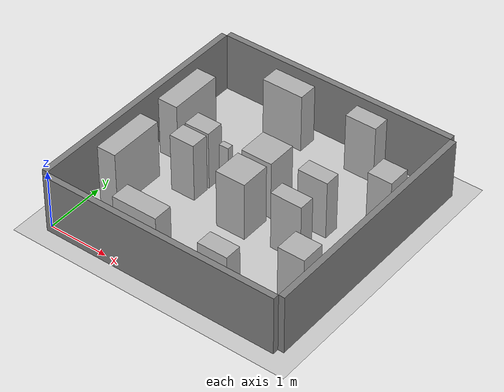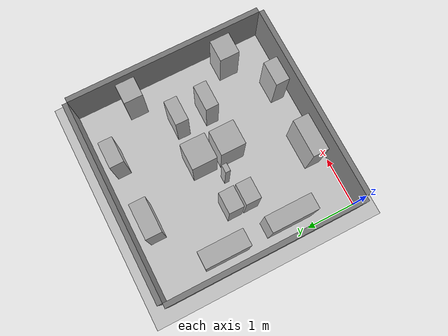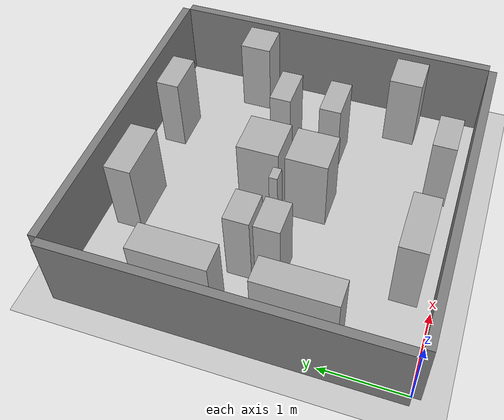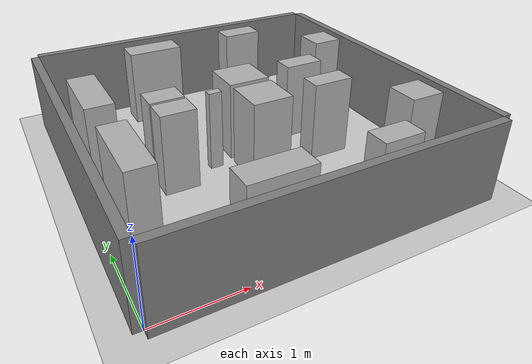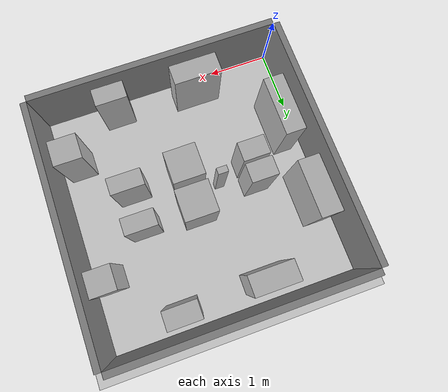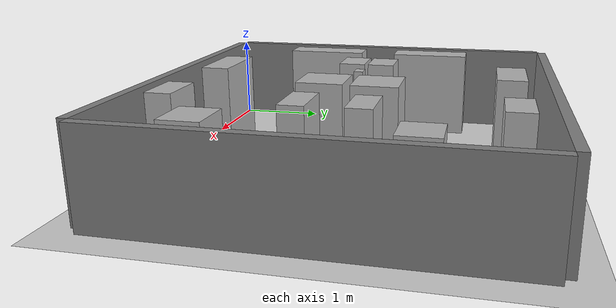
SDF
<?xml version="1.0" ?>
<sdf version="1.6">
  <world name="competition">

    <!-- Ground plane and sun -->
    <include>
      <uri>model://sun</uri>
    </include>
    <include>
      <uri>model://ground_plane</uri>
    </include>

    <!-- Scene configuration -->
    <scene>
      <shadows>false</shadows>
      <grid>false</grid>
      <origin_visual>false</origin_visual>
    </scene>

    <gui fullscreen="0">
      <camera name="orbit_camera">
        <!-- Top-down view of the arena. Robot spawns near (1.0, 0.3). -->
        <pose>2 2 5 0 1.57 0.785</pose>
        <view_controller>orbit</view_controller>
      </camera>
    </gui>

    <!-- Physics: ODE -->
    <physics type="ode">
      <real_time_update_rate>1000</real_time_update_rate>
      <real_time_factor>1</real_time_factor>
      <max_step_size>0.001</max_step_size>
      <ode>
        <solver>
          <type>quick</type>
          <iters>150</iters>
        </solver>
        <constraints>
          <cfm>0.00001</cfm>
          <erp>0.2</erp>
          <contact_max_correcting_vel>100</contact_max_correcting_vel>
          <contact_surface_layer>0.001</contact_surface_layer>
        </constraints>
      </ode>
    </physics>

    <!-- 15 No-Go Zone Walls (ambient 0.7 0.7 0.7 1) -->

    <!-- 1. 垛码区货架B -->
    <model name="wall_垛码区货架B">
      <static>true</static>
      <pose>1.42 0.32 0.5 0 0 0</pose>
      <link name="body">
        <collision name="collision">
          <geometry>
            <box><size>0.76 0.32 1.0</size></box>
          </geometry>
        </collision>
        <visual name="visual">
          <geometry>
            <box><size>0.76 0.32 1.0</size></box>
          </geometry>
          <material>
            <ambient>0.7 0.7 0.7 1</ambient>
          <diffuse>0.7 0.7 0.7 1</diffuse>
          </material>
        </visual>
      </link>
    </model>

    <!-- 2. 分拣区货架B -->
    <model name="wall_分拣区货架B">
      <static>true</static>
      <pose>0.34 1.31 0.5 0 0 0</pose>
      <link name="body">
        <collision name="collision">
          <geometry>
            <box><size>0.32 0.94 1.0</size></box>
          </geometry>
        </collision>
        <visual name="visual">
          <geometry>
            <box><size>0.32 0.94 1.0</size></box>
          </geometry>
          <material>
            <ambient>0.7 0.7 0.7 1</ambient>
          <diffuse>0.7 0.7 0.7 1</diffuse>
          </material>
        </visual>
      </link>
    </model>

    <!-- 3. 货物待装区货架B -->
    <model name="wall_货物待装区货架B">
      <static>true</static>
      <pose>1.03 1.81 0.5 0 0 0</pose>
      <link name="body">
        <collision name="collision">
          <geometry>
            <box><size>0.42 0.30 1.0</size></box>
          </geometry>
        </collision>
        <visual name="visual">
          <geometry>
            <box><size>0.42 0.30 1.0</size></box>
          </geometry>
          <material>
            <ambient>0.7 0.7 0.7 1</ambient>
          <diffuse>0.7 0.7 0.7 1</diffuse>
          </material>
        </visual>
      </link>
    </model>

    <!-- 4. 货物装箱区B -->
    <model name="wall_货物装箱区B">
      <static>true</static>
      <pose>2.07 1.69 0.5 0 0 0</pose>
      <link name="body">
        <collision name="collision">
          <geometry>
            <box><size>0.50 0.50 1.0</size></box>
          </geometry>
        </collision>
        <visual name="visual">
          <geometry>
            <box><size>0.50 0.50 1.0</size></box>
          </geometry>
          <material>
            <ambient>0.7 0.7 0.7 1</ambient>
          <diffuse>0.7 0.7 0.7 1</diffuse>
          </material>
        </visual>
      </link>
    </model>

    <!-- 5. 零件部件仓储区 -->
    <model name="wall_零件部件仓储区">
      <static>true</static>
      <pose>1.58 1.97 0.5 0 0 0</pose>
      <link name="body">
        <collision name="collision">
          <geometry>
            <box><size>0.16 0.10 1.0</size></box>
          </geometry>
        </collision>
        <visual name="visual">
          <geometry>
            <box><size>0.16 0.10 1.0</size></box>
          </geometry>
          <material>
            <ambient>0.7 0.7 0.7 1</ambient>
          <diffuse>0.7 0.7 0.7 1</diffuse>
          </material>
        </visual>
      </link>
    </model>

    <!-- 6. 待派送区B -->
    <model name="wall_待派送区B">
      <static>true</static>
      <pose>3.66 0.92 0.5 0 0 0</pose>
      <link name="body">
        <collision name="collision">
          <geometry>
            <box><size>0.44 0.40 1.0</size></box>
          </geometry>
        </collision>
        <visual name="visual">
          <geometry>
            <box><size>0.44 0.40 1.0</size></box>
          </geometry>
          <material>
            <ambient>0.7 0.7 0.7 1</ambient>
          <diffuse>0.7 0.7 0.7 1</diffuse>
          </material>
        </visual>
      </link>
    </model>

    <!-- 7. 园区2B -->
    <model name="wall_园区2B">
      <static>true</static>
      <pose>2.96 1.67 0.5 0 0 0</pose>
      <link name="body">
        <collision name="collision">
          <geometry>
            <box><size>0.52 0.26 1.0</size></box>
          </geometry>
        </collision>
        <visual name="visual">
          <geometry>
            <box><size>0.52 0.26 1.0</size></box>
          </geometry>
          <material>
            <ambient>0.7 0.7 0.7 1</ambient>
          <diffuse>0.7 0.7 0.7 1</diffuse>
          </material>
        </visual>
      </link>
    </model>

    <!-- 8. 园区1B -->
    <model name="wall_园区1B">
      <static>true</static>
      <pose>2.79 0.28 0.5 0 0 0</pose>
      <link name="body">
        <collision name="collision">
          <geometry>
            <box><size>0.50 0.28 1.0</size></box>
          </geometry>
        </collision>
        <visual name="visual">
          <geometry>
            <box><size>0.50 0.28 1.0</size></box>
          </geometry>
          <material>
            <ambient>0.7 0.7 0.7 1</ambient>
          <diffuse>0.7 0.7 0.7 1</diffuse>
          </material>
        </visual>
      </link>
    </model>

    <!-- 9. 垛码区货架A -->
    <model name="wall_垛码区货架A">
      <static>true</static>
      <pose>1.43 3.64 0.5 0 0 0</pose>
      <link name="body">
        <collision name="collision">
          <geometry>
            <box><size>0.70 0.32 1.0</size></box>
          </geometry>
        </collision>
        <visual name="visual">
          <geometry>
            <box><size>0.70 0.32 1.0</size></box>
          </geometry>
          <material>
            <ambient>0.7 0.7 0.7 1</ambient>
          <diffuse>0.7 0.7 0.7 1</diffuse>
          </material>
        </visual>
      </link>
    </model>

    <!-- 10. 分拣区货架A -->
    <model name="wall_分拣区货架A">
      <static>true</static>
      <pose>0.33 2.65 0.5 0 0 0</pose>
      <link name="body">
        <collision name="collision">
          <geometry>
            <box><size>0.34 0.90 1.0</size></box>
          </geometry>
        </collision>
        <visual name="visual">
          <geometry>
            <box><size>0.34 0.90 1.0</size></box>
          </geometry>
          <material>
            <ambient>0.7 0.7 0.7 1</ambient>
          <diffuse>0.7 0.7 0.7 1</diffuse>
          </material>
        </visual>
      </link>
    </model>

    <!-- 11. 园区1A -->
    <model name="wall_园区1A">
      <static>true</static>
      <pose>2.78 3.68 0.5 0 0 0</pose>
      <link name="body">
        <collision name="collision">
          <geometry>
            <box><size>0.52 0.28 1.0</size></box>
          </geometry>
        </collision>
        <visual name="visual">
          <geometry>
            <box><size>0.52 0.28 1.0</size></box>
          </geometry>
          <material>
            <ambient>0.7 0.7 0.7 1</ambient>
          <diffuse>0.7 0.7 0.7 1</diffuse>
          </material>
        </visual>
      </link>
    </model>

    <!-- 12. 园区2A -->
    <model name="wall_园区2A">
      <static>true</static>
      <pose>2.95 2.29 0.5 0 0 0</pose>
      <link name="body">
        <collision name="collision">
          <geometry>
            <box><size>0.50 0.26 1.0</size></box>
          </geometry>
        </collision>
        <visual name="visual">
          <geometry>
            <box><size>0.50 0.26 1.0</size></box>
          </geometry>
          <material>
            <ambient>0.7 0.7 0.7 1</ambient>
          <diffuse>0.7 0.7 0.7 1</diffuse>
          </material>
        </visual>
      </link>
    </model>

    <!-- 13. 货物待装区货架A -->
    <model name="wall_货物待装区货架A">
      <static>true</static>
      <pose>1.03 2.15 0.5 0 0 0</pose>
      <link name="body">
        <collision name="collision">
          <geometry>
            <box><size>0.42 0.30 1.0</size></box>
          </geometry>
        </collision>
        <visual name="visual">
          <geometry>
            <box><size>0.42 0.30 1.0</size></box>
          </geometry>
          <material>
            <ambient>0.7 0.7 0.7 1</ambient>
          <diffuse>0.7 0.7 0.7 1</diffuse>
          </material>
        </visual>
      </link>
    </model>

    <!-- 14. 货物装箱区A -->
    <model name="wall_货物装箱区A">
      <static>true</static>
      <pose>2.08 2.27 0.5 0 0 0</pose>
      <link name="body">
        <collision name="collision">
          <geometry>
            <box><size>0.52 0.50 1.0</size></box>
          </geometry>
        </collision>
        <visual name="visual">
          <geometry>
            <box><size>0.52 0.50 1.0</size></box>
          </geometry>
          <material>
            <ambient>0.7 0.7 0.7 1</ambient>
          <diffuse>0.7 0.7 0.7 1</diffuse>
          </material>
        </visual>
      </link>
    </model>

    <!-- 15. 待派送区A -->
    <model name="wall_待派送区A">
      <static>true</static>
      <pose>3.70 2.89 0.5 0 0 0</pose>
      <link name="body">
        <collision name="collision">
          <geometry>
            <box><size>0.40 0.38 1.0</size></box>
          </geometry>
        </collision>
        <visual name="visual">
          <geometry>
            <box><size>0.40 0.38 1.0</size></box>
          </geometry>
          <material>
            <ambient>0.7 0.7 0.7 1</ambient>
          <diffuse>0.7 0.7 0.7 1</diffuse>
          </material>
        </visual>
      </link>
    </model>

    <!-- 4 Arena Boundary Walls (ambient 0.5 0.5 0.5 1) -->

    <!-- North -->
    <model name="wall_boundary_north">
      <static>true</static>
      <pose>2.0 4.05 0.5 0 0 0</pose>
      <link name="body">
        <collision name="collision">
          <geometry>
            <box><size>4.0 0.1 1.0</size></box>
          </geometry>
        </collision>
        <visual name="visual">
          <geometry>
            <box><size>4.0 0.1 1.0</size></box>
          </geometry>
          <material>
            <ambient>0.5 0.5 0.5 1</ambient>
          <diffuse>0.5 0.5 0.5 1</diffuse>
          </material>
        </visual>
      </link>
    </model>

    <!-- South -->
    <model name="wall_boundary_south">
      <static>true</static>
      <pose>2.0 -0.05 0.5 0 0 0</pose>
      <link name="body">
        <collision name="collision">
          <geometry>
            <box><size>4.0 0.1 1.0</size></box>
          </geometry>
        </collision>
        <visual name="visual">
          <geometry>
            <box><size>4.0 0.1 1.0</size></box>
          </geometry>
          <material>
            <ambient>0.5 0.5 0.5 1</ambient>
          <diffuse>0.5 0.5 0.5 1</diffuse>
          </material>
        </visual>
      </link>
    </model>

    <!-- East -->
    <model name="wall_boundary_east">
      <static>true</static>
      <pose>4.05 2.0 0.5 0 0 0</pose>
      <link name="body">
        <collision name="collision">
          <geometry>
            <box><size>0.1 4.0 1.0</size></box>
          </geometry>
        </collision>
        <visual name="visual">
          <geometry>
            <box><size>0.1 4.0 1.0</size></box>
          </geometry>
          <material>
            <ambient>0.5 0.5 0.5 1</ambient>
          <diffuse>0.5 0.5 0.5 1</diffuse>
          </material>
        </visual>
      </link>
    </model>

    <!-- West -->
    <model name="wall_boundary_west">
      <static>true</static>
      <pose>-0.05 2.0 0.5 0 0 0</pose>
      <link name="body">
        <collision name="collision">
          <geometry>
            <box><size>0.1 4.0 1.0</size></box>
          </geometry>
        </collision>
        <visual name="visual">
          <geometry>
            <box><size>0.1 4.0 1.0</size></box>
          </geometry>
          <material>
            <ambient>0.5 0.5 0.5 1</ambient>
          <diffuse>0.5 0.5 0.5 1</diffuse>
          </material>
        </visual>
      </link>
    </model>

  </world>
</sdf>
